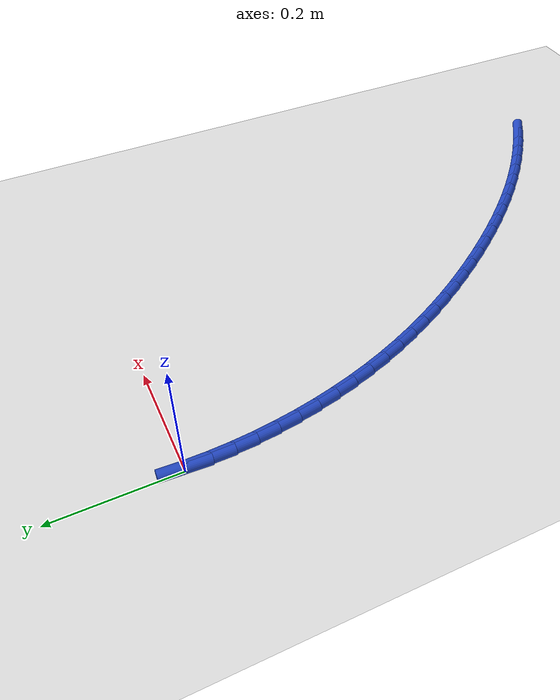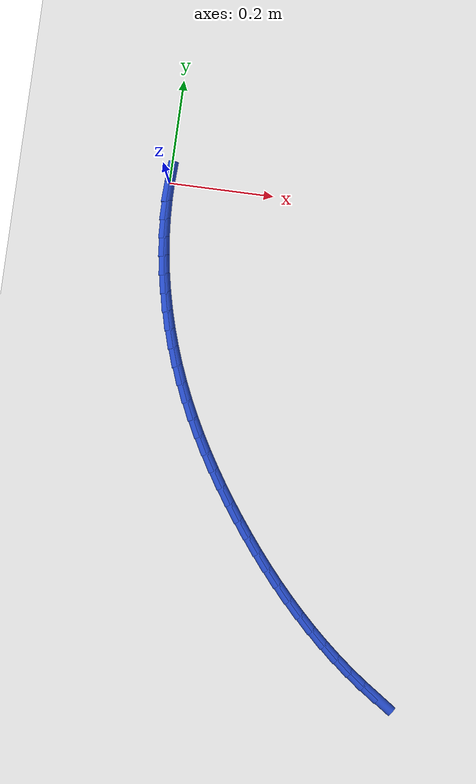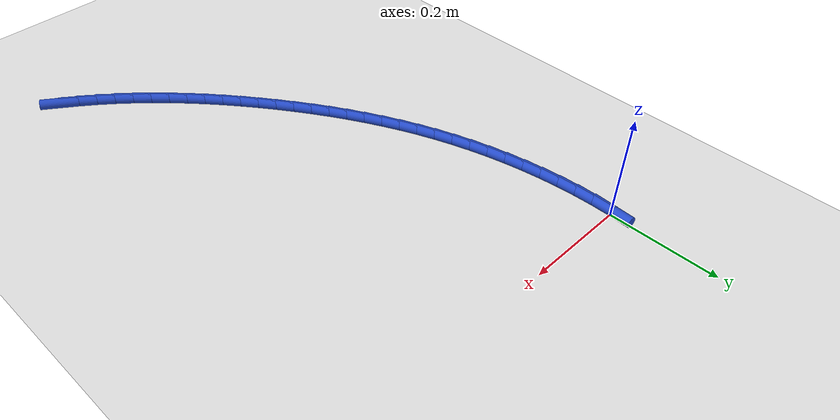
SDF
<sdf version="1.6">
 <world name="default">
  <model name="ground_plane">
   <static>1</static>
   <link name="link">
    <collision name="collision">
     <geometry><plane><normal>0 0 1</normal><size>100 100</size></plane></geometry>
     <surface><friction><ode><mu>100</mu><mu2>50</mu2></ode></friction></surface>
    </collision>
    <visual name="visual">
     <cast_shadows>0</cast_shadows>
     <geometry><plane><normal>0 0 1</normal><size>100 100</size></plane></geometry>
     <material>
      <script><uri>file://media/materials/scripts/gazebo.material</uri><name>Gazebo/WhiteGlow</name></script>
     </material>
    </visual>
   </link>
  </model>
  <model name="line">
   <link name="link_159">
    <pose>0.5158352776779239 -0.9168577497297137 0.01 0 1.57 -0.5992503173831775</pose>
    <collision name="collision">
     <geometry><cylinder><radius>0.01</radius><length>0.08</length></cylinder></geometry>
    </collision>
    <visual name="visual">
     <material>
      <script><name>Gazebo/Blue</name><uri>file://media/materials/scripts/gazebo.material</uri></script>
     </material>
     <geometry><cylinder><radius>0.01</radius><length>0.08</length></cylinder></geometry>
    </visual>
   </link>
   <link name="link_160">
    <pose>0.48687090804234073 -0.8970740192099689 0.01 0 1.57 -0.6370255730292292</pose>
    <collision name="collision">
     <geometry><cylinder><radius>0.01</radius><length>0.08</length></cylinder></geometry>
    </collision>
    <visual name="visual">
     <material>
      <script><name>Gazebo/Blue</name><uri>file://media/materials/scripts/gazebo.material</uri></script>
     </material>
     <geometry><cylinder><radius>0.01</radius><length>0.08</length></cylinder></geometry>
    </visual>
   </link>
   <link name="link_161">
    <pose>0.45862874640351287 -0.8761767757191974 0.01 0 1.57 -0.6731255288748428</pose>
    <collision name="collision">
     <geometry><cylinder><radius>0.01</radius><length>0.08</length></cylinder></geometry>
    </collision>
    <visual name="visual">
     <material>
      <script><name>Gazebo/Blue</name><uri>file://media/materials/scripts/gazebo.material</uri></script>
     </material>
     <geometry><cylinder><radius>0.01</radius><length>0.08</length></cylinder></geometry>
    </visual>
   </link>
   <link name="link_162">
    <pose>0.43110581642314805 -0.8542312535782645 0.01 0 1.57 -0.7075805661132184</pose>
    <collision name="collision">
     <geometry><cylinder><radius>0.01</radius><length>0.08</length></cylinder></geometry>
    </collision>
    <visual name="visual">
     <material>
      <script><name>Gazebo/Blue</name><uri>file://media/materials/scripts/gazebo.material</uri></script>
     </material>
     <geometry><cylinder><radius>0.01</radius><length>0.08</length></cylinder></geometry>
    </visual>
   </link>
   <link name="link_163">
    <pose>0.40429914176295406 -0.8313026871080356 0.01 0 1.57 -0.740433908072044</pose>
    <collision name="collision">
     <geometry><cylinder><radius>0.01</radius><length>0.08</length></cylinder></geometry>
    </collision>
    <visual name="visual">
     <material>
      <script><name>Gazebo/Blue</name><uri>file://media/materials/scripts/gazebo.material</uri></script>
     </material>
     <geometry><cylinder><radius>0.01</radius><length>0.08</length></cylinder></geometry>
    </visual>
   </link>
   <link name="link_164">
    <pose>0.3782057460846387 -0.8074563106293757 0.01 0 1.57 -0.7717386110477008</pose>
    <collision name="collision">
     <geometry><cylinder><radius>0.01</radius><length>0.08</length></cylinder></geometry>
    </collision>
    <visual name="visual">
     <material>
      <script><name>Gazebo/Blue</name><uri>file://media/materials/scripts/gazebo.material</uri></script>
     </material>
     <geometry><cylinder><radius>0.01</radius><length>0.08</length></cylinder></geometry>
    </visual>
   </link>
   <link name="link_165">
    <pose>0.3528226530499098 -0.7827573584631506 0.01 0 1.57 -0.8015549215361651</pose>
    <collision name="collision">
     <geometry><cylinder><radius>0.01</radius><length>0.08</length></cylinder></geometry>
    </collision>
    <visual name="visual">
     <material>
      <script><name>Gazebo/Blue</name><uri>file://media/materials/scripts/gazebo.material</uri></script>
     </material>
     <geometry><cylinder><radius>0.01</radius><length>0.08</length></cylinder></geometry>
    </visual>
   </link>
   <link name="link_166">
    <pose>0.32814688632047534 -0.757271064930226 0.01 0 1.57 -0.8299480209418273</pose>
    <collision name="collision">
     <geometry><cylinder><radius>0.01</radius><length>0.08</length></cylinder></geometry>
    </collision>
    <visual name="visual">
     <material>
      <script><name>Gazebo/Blue</name><uri>file://media/materials/scripts/gazebo.material</uri></script>
     </material>
     <geometry><cylinder><radius>0.01</radius><length>0.08</length></cylinder></geometry>
    </visual>
   </link>
   <link name="link_167">
    <pose>0.30417546955804214 -0.7310626643514659 0.01 0 1.57 -0.8569861509863689</pose>
    <collision name="collision">
     <geometry><cylinder><radius>0.01</radius><length>0.08</length></cylinder></geometry>
    </collision>
    <visual name="visual">
     <material>
      <script><name>Gazebo/Blue</name><uri>file://media/materials/scripts/gazebo.material</uri></script>
     </material>
     <geometry><cylinder><radius>0.01</radius><length>0.08</length></cylinder></geometry>
    </visual>
   </link>
   <link name="link_168">
    <pose>0.28090542642431876 -0.7041973910477367 0.01 0 1.57 -0.8827390948766917</pose>
    <collision name="collision">
     <geometry><cylinder><radius>0.01</radius><length>0.08</length></cylinder></geometry>
    </collision>
    <visual name="visual">
     <material>
      <script><name>Gazebo/Blue</name><uri>file://media/materials/scripts/gazebo.material</uri></script>
     </material>
     <geometry><cylinder><radius>0.01</radius><length>0.08</length></cylinder></geometry>
    </visual>
   </link>
   <link name="link_169">
    <pose>0.2583337805810127 -0.6767404793399032 0.01 0 1.57 -0.907276978937747</pose>
    <collision name="collision">
     <geometry><cylinder><radius>0.01</radius><length>0.08</length></cylinder></geometry>
    </collision>
    <visual name="visual">
     <material>
      <script><name>Gazebo/Blue</name><uri>file://media/materials/scripts/gazebo.material</uri></script>
     </material>
     <geometry><cylinder><radius>0.01</radius><length>0.08</length></cylinder></geometry>
    </visual>
   </link>
   <link name="link_170">
    <pose>0.2364575556898317 -0.648757163548831 0.01 0 1.57 -0.9306693549181019</pose>
    <collision name="collision">
     <geometry><cylinder><radius>0.01</radius><length>0.08</length></cylinder></geometry>
    </collision>
    <visual name="visual">
     <material>
      <script><name>Gazebo/Blue</name><uri>file://media/materials/scripts/gazebo.material</uri></script>
     </material>
     <geometry><cylinder><radius>0.01</radius><length>0.08</length></cylinder></geometry>
    </visual>
   </link>
   <link name="link_171">
    <pose>0.21527377541248363 -0.6203126779953853 0.01 0 1.57 -0.9532023484133795</pose>
    <collision name="collision">
     <geometry><cylinder><radius>0.01</radius><length>0.08</length></cylinder></geometry>
    </collision>
    <visual name="visual">
     <material>
      <script><name>Gazebo/Blue</name><uri>file://media/materials/scripts/gazebo.material</uri></script>
     </material>
     <geometry><cylinder><radius>0.01</radius><length>0.08</length></cylinder></geometry>
    </visual>
   </link>
   <link name="link_172">
    <pose>0.19478400896177142 -0.5914653478274887 0.01 0 1.57 -0.9766050504850923</pose>
    <collision name="collision">
     <geometry><cylinder><radius>0.01</radius><length>0.08</length></cylinder></geometry>
    </collision>
    <visual name="visual">
     <material>
      <script><name>Gazebo/Blue</name><uri>file://media/materials/scripts/gazebo.material</uri></script>
     </material>
     <geometry><cylinder><radius>0.01</radius><length>0.08</length></cylinder></geometry>
    </visual>
   </link>
   <link name="link_173">
    <pose>0.17502481094470348 -0.5622203208919996 0.01 0 1.57 -1.0016748599874121</pose>
    <collision name="collision">
     <geometry><cylinder><radius>0.01</radius><length>0.08</length></cylinder></geometry>
    </collision>
    <visual name="visual">
     <material>
      <script><name>Gazebo/Blue</name><uri>file://media/materials/scripts/gazebo.material</uri></script>
     </material>
     <geometry><cylinder><radius>0.01</radius><length>0.08</length></cylinder></geometry>
    </visual>
   </link>
   <link name="link_174">
    <pose>0.1560489778351964 -0.5325580576293352 0.01 0 1.57 -1.0284229121075716</pose>
    <collision name="collision">
     <geometry><cylinder><radius>0.01</radius><length>0.08</length></cylinder></geometry>
    </collision>
    <visual name="visual">
     <material>
      <script><name>Gazebo/Blue</name><uri>file://media/materials/scripts/gazebo.material</uri></script>
     </material>
     <geometry><cylinder><radius>0.01</radius><length>0.08</length></cylinder></geometry>
    </visual>
   </link>
   <link name="link_175">
    <pose>0.13790939554768525 -0.5024588825315973 0.01 0 1.57 -1.0568462486916361</pose>
    <collision name="collision">
     <geometry><cylinder><radius>0.01</radius><length>0.08</length></cylinder></geometry>
    </collision>
    <visual name="visual">
     <material>
      <script><name>Gazebo/Blue</name><uri>file://media/materials/scripts/gazebo.material</uri></script>
     </material>
     <geometry><cylinder><radius>0.01</radius><length>0.08</length></cylinder></geometry>
    </visual>
   </link>
   <link name="link_176">
    <pose>0.12065894999660534 -0.4719031200908872 0.01 0 1.57 -1.08692982623136</pose>
    <collision name="collision">
     <geometry><cylinder><radius>0.01</radius><length>0.08</length></cylinder></geometry>
    </collision>
    <visual name="visual">
     <material>
      <script><name>Gazebo/Blue</name><uri>file://media/materials/scripts/gazebo.material</uri></script>
     </material>
     <geometry><cylinder><radius>0.01</radius><length>0.08</length></cylinder></geometry>
    </visual>
   </link>
   <link name="link_177">
    <pose>0.10435052709639185 -0.4408710947993066 0.01 0 1.57 -1.118644209867126</pose>
    <collision name="collision">
     <geometry><cylinder><radius>0.01</radius><length>0.08</length></cylinder></geometry>
    </collision>
    <visual name="visual">
     <material>
      <script><name>Gazebo/Blue</name><uri>file://media/materials/scripts/gazebo.material</uri></script>
     </material>
     <geometry><cylinder><radius>0.01</radius><length>0.08</length></cylinder></geometry>
    </visual>
   </link>
   <link name="link_178">
    <pose>0.08903701276147995 -0.4093431311489566 0.01 0 1.57 -1.1519433522360183</pose>
    <collision name="collision">
     <geometry><cylinder><radius>0.01</radius><length>0.08</length></cylinder></geometry>
    </collision>
    <visual name="visual">
     <material>
      <script><name>Gazebo/Blue</name><uri>file://media/materials/scripts/gazebo.material</uri></script>
     </material>
     <geometry><cylinder><radius>0.01</radius><length>0.08</length></cylinder></geometry>
    </visual>
   </link>
   <link name="link_179">
    <pose>0.07477129290630516 -0.3772995536319395 0.01 0 1.57 -1.1867625995817446</pose>
    <collision name="collision">
     <geometry><cylinder><radius>0.01</radius><length>0.08</length></cylinder></geometry>
    </collision>
    <visual name="visual">
     <material>
      <script><name>Gazebo/Blue</name><uri>file://media/materials/scripts/gazebo.material</uri></script>
     </material>
     <geometry><cylinder><radius>0.01</radius><length>0.08</length></cylinder></geometry>
    </visual>
   </link>
   <link name="link_180">
    <pose>0.061606253445302114 -0.34472068674035555 0.01 0 1.57 -1.2230023479089969</pose>
    <collision name="collision">
     <geometry><cylinder><radius>0.01</radius><length>0.08</length></cylinder></geometry>
    </collision>
    <visual name="visual">
     <material>
      <script><name>Gazebo/Blue</name><uri>file://media/materials/scripts/gazebo.material</uri></script>
     </material>
     <geometry><cylinder><radius>0.01</radius><length>0.08</length></cylinder></geometry>
    </visual>
   </link>
   <link name="link_181">
    <pose>0.04959462360819651 -0.3115879473593491 0.01 0 1.57 -1.2600088000505931</pose>
    <collision name="collision">
     <geometry><cylinder><radius>0.01</radius><length>0.08</length></cylinder></geometry>
    </collision>
    <visual name="visual">
     <material>
      <script><name>Gazebo/Blue</name><uri>file://media/materials/scripts/gazebo.material</uri></script>
     </material>
     <geometry><cylinder><radius>0.01</radius><length>0.08</length></cylinder></geometry>
    </visual>
   </link>
   <link name="link_182">
    <pose>0.0387828088881462 -0.2779268409506688 0.01 0 1.57 -1.2971259915018372</pose>
    <collision name="collision">
     <geometry><cylinder><radius>0.01</radius><length>0.08</length></cylinder></geometry>
    </collision>
    <visual name="visual">
     <material>
      <script><name>Gazebo/Blue</name><uri>file://media/materials/scripts/gazebo.material</uri></script>
     </material>
     <geometry><cylinder><radius>0.01</radius><length>0.08</length></cylinder></geometry>
    </visual>
   </link>
   <link name="link_183">
    <pose>0.029208862855302064 -0.24382110190342876 0.01 0 1.57 -1.3344953195644491</pose>
    <collision name="collision">
     <geometry><cylinder><radius>0.01</radius><length>0.08</length></cylinder></geometry>
    </collision>
    <visual name="visual">
     <material>
      <script><name>Gazebo/Blue</name><uri>file://media/materials/scripts/gazebo.material</uri></script>
     </material>
     <geometry><cylinder><radius>0.01</radius><length>0.08</length></cylinder></geometry>
    </visual>
   </link>
   <link name="link_184">
    <pose>0.020910266892197844 -0.2093584538522355 0.01 0 1.57 -1.372310290429731</pose>
    <collision name="collision">
     <geometry><cylinder><radius>0.01</radius><length>0.08</length></cylinder></geometry>
    </collision>
    <visual name="visual">
     <material>
      <script><name>Gazebo/Blue</name><uri>file://media/materials/scripts/gazebo.material</uri></script>
     </material>
     <geometry><cylinder><radius>0.01</radius><length>0.08</length></cylinder></geometry>
    </visual>
   </link>
   <link name="link_185">
    <pose>0.013924502381367285 -0.174626620431695 0.01 0 1.57 -1.4107638633001522</pose>
    <collision name="collision">
     <geometry><cylinder><radius>0.01</radius><length>0.08</length></cylinder></geometry>
    </collision>
    <visual name="visual">
     <material>
      <script><name>Gazebo/Blue</name><uri>file://media/materials/scripts/gazebo.material</uri></script>
     </material>
     <geometry><cylinder><radius>0.01</radius><length>0.08</length></cylinder></geometry>
    </visual>
   </link>
   <link name="link_186">
    <pose>0.008289050705344218 -0.13971332527641409 0.01 0 1.57 -1.4500493342843264</pose>
    <collision name="collision">
     <geometry><cylinder><radius>0.01</radius><length>0.08</length></cylinder></geometry>
    </collision>
    <visual name="visual">
     <material>
      <script><name>Gazebo/Blue</name><uri>file://media/materials/scripts/gazebo.material</uri></script>
     </material>
     <geometry><cylinder><radius>0.01</radius><length>0.08</length></cylinder></geometry>
    </visual>
   </link>
   <link name="link_187">
    <pose>0.004041393246662142 -0.10470629202099757 0.01 0 1.57 -1.490360814919726</pose>
    <collision name="collision">
     <geometry><cylinder><radius>0.01</radius><length>0.08</length></cylinder></geometry>
    </collision>
    <visual name="visual">
     <material>
      <script><name>Gazebo/Blue</name><uri>file://media/materials/scripts/gazebo.material</uri></script>
     </material>
     <geometry><cylinder><radius>0.01</radius><length>0.08</length></cylinder></geometry>
    </visual>
   </link>
   <link name="link_188">
    <pose>0.0012190113878549269 -0.06969324430005235 0.01 0 1.57 -1.5318931827032118</pose>
    <collision name="collision">
     <geometry><cylinder><radius>0.01</radius><length>0.08</length></cylinder></geometry>
    </collision>
    <visual name="visual">
     <material>
      <script><name>Gazebo/Blue</name><uri>file://media/materials/scripts/gazebo.material</uri></script>
     </material>
     <geometry><cylinder><radius>0.01</radius><length>0.08</length></cylinder></geometry>
    </visual>
   </link>
   <link name="link_189">
    <pose>-0.00014061348854370152 -0.03476190574818447 0.01 0 1.57 1.566751303410809</pose>
    <collision name="collision">
     <geometry><cylinder><radius>0.01</radius><length>0.08</length></cylinder></geometry>
    </collision>
    <visual name="visual">
     <material>
      <script><name>Gazebo/Blue</name><uri>file://media/materials/scripts/gazebo.material</uri></script>
     </material>
     <geometry><cylinder><radius>0.01</radius><length>0.08</length></cylinder></geometry>
    </visual>
   </link>
   <link name="link_190">
    <pose>-1.734723475976807e-18 -1.3183898417423734e-16 0.01 0 1.57 1.5221939880183928</pose>
    <collision name="collision">
     <geometry><cylinder><radius>0.01</radius><length>0.08</length></cylinder></geometry>
    </collision>
    <visual name="visual">
     <material>
      <script><name>Gazebo/Blue</name><uri>file://media/materials/scripts/gazebo.material</uri></script>
     </material>
     <geometry><cylinder><radius>0.01</radius><length>0.08</length></cylinder></geometry>
    </visual>
   </link>
  </model>
 </world>
</sdf>
